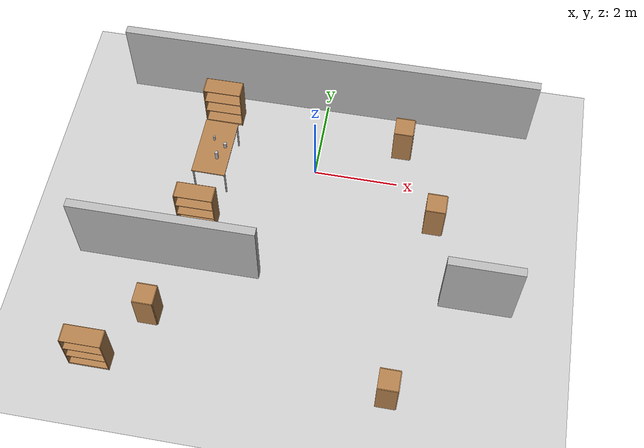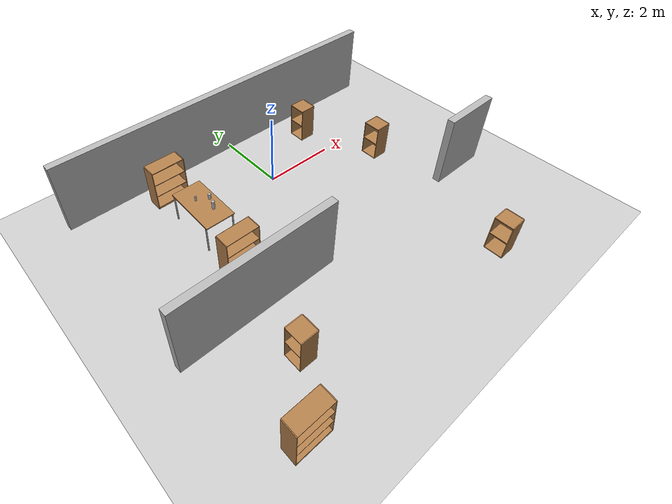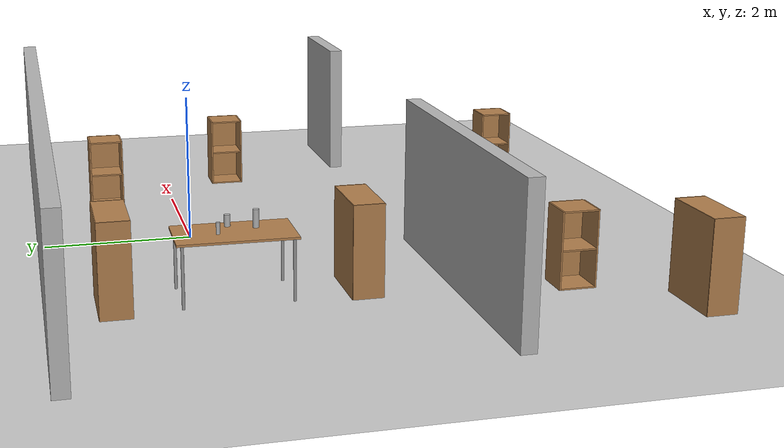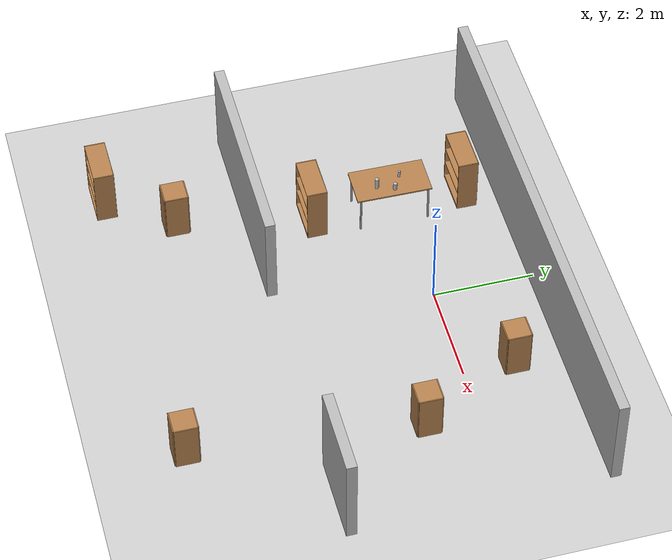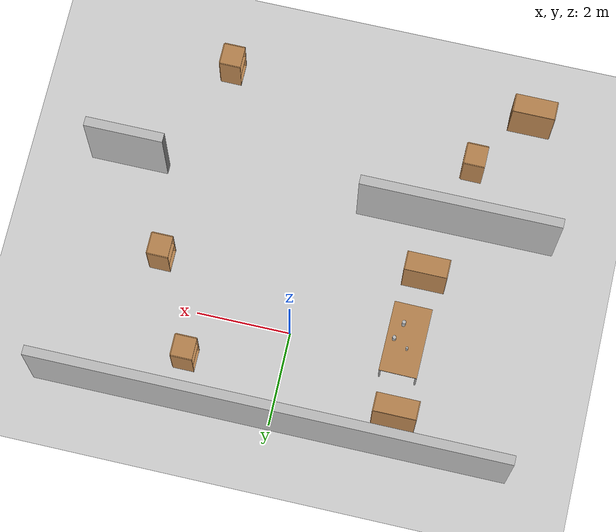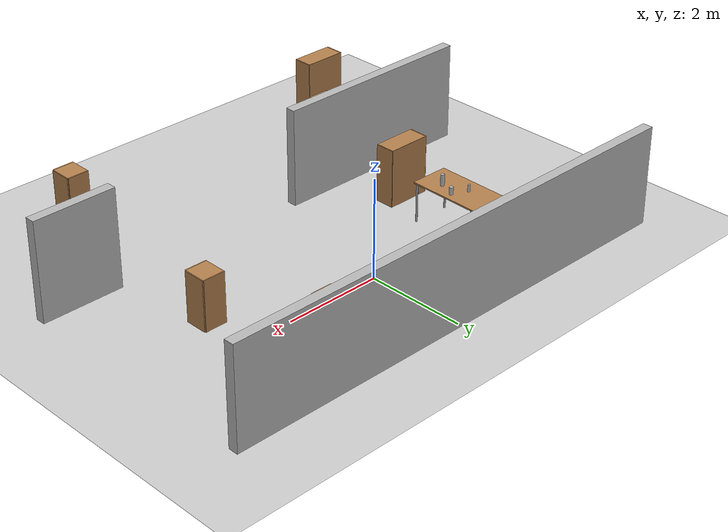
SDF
<sdf version="1.7">
 <world name="default">
  <model name="ground_plane">
   <static>1</static>
   <link name="link">
    <collision name="collision">
     <geometry><plane><normal>0 0 1</normal><size>100 100</size></plane></geometry>
     <surface><friction><ode><mu>100</mu><mu2>50</mu2></ode></friction></surface>
    </collision>
    <visual name="visual">
     <cast_shadows>0</cast_shadows>
     <geometry><plane><normal>0 0 1</normal><size>100 100</size></plane></geometry>
     <material>
      <script><uri>file://media/materials/scripts/gazebo.material</uri><name>Gazebo/Grey</name></script>
     </material>
    </visual>
    <velocity_decay><linear>0</linear><angular>0</angular></velocity_decay>
   </link>
  </model>
  <model name="wall_2_model">
   <pose>0 2 1 0 -0 0</pose>
   <static>1</static>
   <link name="wall_2_body">
    <inertial>
     <mass>1</mass>
     <inertia><ixx>1</ixx><ixy>0</ixy><ixz>0</ixz><iyy>1</iyy><iyz>0</iyz><izz>1</izz></inertia>
    </inertial>
    <collision name="collision"><geometry><box><size>10 0.2 2</size></box></geometry></collision>
    <visual name="visual"><geometry><box><size>10 0.2 2</size></box></geometry></visual>
    <velocity_decay><linear>0</linear><angular>0</angular></velocity_decay>
   </link>
  </model>
  <model name="wall_5_model">
   <pose>-2.89886 -3 1 0 -0 0</pose>
   <static>1</static>
   <link name="wall_5_body">
    <inertial>
     <mass>1</mass>
     <inertia><ixx>1</ixx><ixy>0</ixy><ixz>0</ixz><iyy>1</iyy><iyz>0</iyz><izz>1</izz></inertia>
    </inertial>
    <collision name="collision"><geometry><box><size>4.24454 0.2 2</size></box></geometry></collision>
    <visual name="visual"><geometry><box><size>4.24454 0.2 2</size></box></geometry></visual>
    <velocity_decay><linear>0</linear><angular>0</angular></velocity_decay>
   </link>
  </model>
  <model name="wall_6_model">
   <pose>4.18871 -2.96928 1 0 -0 0</pose>
   <static>1</static>
   <link name="wall_6_body">
    <inertial>
     <mass>1</mass>
     <inertia><ixx>1</ixx><ixy>0</ixy><ixz>0</ixz><iyy>1</iyy><iyz>0</iyz><izz>1</izz></inertia>
    </inertial>
    <collision name="collision"><geometry><box><size>1.67243 0.2 2</size></box></geometry></collision>
    <visual name="visual"><geometry><box><size>1.67243 0.2 2</size></box></geometry></visual>
    <velocity_decay><linear>0</linear><angular>0</angular></velocity_decay>
   </link>
  </model>
  <model name="cabinet">
   <static>0</static>
   <link name="cabinet_bottom_plate">
    <inertial>
     <pose>0 0 -1 0 -0 0</pose>
     <inertia><ixx>2.05</ixx><ixy>0</ixy><ixz>0</ixz><iyy>2.05</iyy><iyz>0</iyz><izz>2.05</izz></inertia>
     <mass>25</mass>
    </inertial>
    <collision name="cabinet_bottom_plate_geom">
     <pose>0 0 0.01 0 -0 0</pose>
     <geometry><box><size>0.45 0.45 0.02</size></box></geometry>
    </collision>
    <visual name="cabinet_bottom_plate_geom_visual">
     <pose>0 0 0.01 0 -0 0</pose>
     <geometry><box><size>0.45 0.45 0.02</size></box></geometry>
     <material>
      <script><uri>file://media/materials/scripts/gazebo.material</uri><name>Gazebo/Wood</name></script>
     </material>
    </visual>
    <collision name="cabinet_bottom_plate_geom_cabinet_back_plate">
     <pose>0.235 0 0.51 0 -0 0</pose>
     <geometry><box><size>0.02 0.45 1.02</size></box></geometry>
    </collision>
    <visual name="cabinet_bottom_plate_geom_cabinet_back_plate_visual">
     <pose>0.235 0 0.51 0 -0 0</pose>
     <geometry><box><size>0.02 0.45 1.02</size></box></geometry>
     <material>
      <script><uri>file://media/materials/scripts/gazebo.material</uri><name>Gazebo/Wood</name></script>
     </material>
    </visual>
    <collision name="cabinet_bottom_plate_geom_cabinet_left_plate">
     <pose>0 0.235 0.51 0 -0 0</pose>
     <geometry><box><size>0.45 0.02 1.02</size></box></geometry>
    </collision>
    <visual name="cabinet_bottom_plate_geom_cabinet_left_plate_visual">
     <pose>0 0.235 0.51 0 -0 0</pose>
     <geometry><box><size>0.45 0.02 1.02</size></box></geometry>
     <material>
      <script><uri>file://media/materials/scripts/gazebo.material</uri><name>Gazebo/Wood</name></script>
     </material>
    </visual>
    <collision name="cabinet_bottom_plate_geom_cabinet_middle_plate">
     <pose>0 0 0.51 0 -0 0</pose>
     <geometry><box><size>0.45 0.45 0.02</size></box></geometry>
    </collision>
    <visual name="cabinet_bottom_plate_geom_cabinet_middle_plate_visual">
     <pose>0 0 0.51 0 -0 0</pose>
     <geometry><box><size>0.45 0.45 0.02</size></box></geometry>
     <material>
      <script><uri>file://media/materials/scripts/gazebo.material</uri><name>Gazebo/Wood</name></script>
     </material>
    </visual>
    <collision name="cabinet_bottom_plate_geom_cabinet_right_plate">
     <pose>0 -0.235 0.51 0 -0 0</pose>
     <geometry><box><size>0.45 0.02 1.02</size></box></geometry>
    </collision>
    <visual name="cabinet_bottom_plate_geom_cabinet_right_plate_visual">
     <pose>0 -0.235 0.51 0 -0 0</pose>
     <geometry><box><size>0.45 0.02 1.02</size></box></geometry>
     <material>
      <script><uri>file://media/materials/scripts/gazebo.material</uri><name>Gazebo/Wood</name></script>
     </material>
    </visual>
    <collision name="cabinet_bottom_plate_geom_cabinet_top_plate">
     <pose>0 0 1.01 0 -0 0</pose>
     <geometry><box><size>0.45 0.45 0.02</size></box></geometry>
    </collision>
    <visual name="cabinet_bottom_plate_geom_cabinet_top_plate_visual">
     <pose>0 0 1.01 0 -0 0</pose>
     <geometry><box><size>0.45 0.45 0.02</size></box></geometry>
     <material>
      <script><uri>file://media/materials/scripts/gazebo.material</uri><name>Gazebo/Wood</name></script>
     </material>
    </visual>
    <velocity_decay><linear>0</linear><angular>0</angular></velocity_decay>
   </link>
   <pose>1.9949 1.00009 -0 1e-06 -0 -0.000435</pose>
  </model>
  <model name="cabinet_0">
   <static>0</static>
   <link name="cabinet_bottom_plate">
    <inertial>
     <pose>0 0 -1 0 -0 0</pose>
     <inertia><ixx>2.05</ixx><ixy>0</ixy><ixz>0</ixz><iyy>2.05</iyy><iyz>0</iyz><izz>2.05</izz></inertia>
     <mass>25</mass>
    </inertial>
    <collision name="cabinet_bottom_plate_geom">
     <pose>0 0 0.01 0 -0 0</pose>
     <geometry><box><size>0.45 0.45 0.02</size></box></geometry>
    </collision>
    <visual name="cabinet_bottom_plate_geom_visual">
     <pose>0 0 0.01 0 -0 0</pose>
     <geometry><box><size>0.45 0.45 0.02</size></box></geometry>
     <material>
      <script><uri>file://media/materials/scripts/gazebo.material</uri><name>Gazebo/Wood</name></script>
     </material>
    </visual>
    <collision name="cabinet_bottom_plate_geom_cabinet_back_plate">
     <pose>0.235 0 0.51 0 -0 0</pose>
     <geometry><box><size>0.02 0.45 1.02</size></box></geometry>
    </collision>
    <visual name="cabinet_bottom_plate_geom_cabinet_back_plate_visual">
     <pose>0.235 0 0.51 0 -0 0</pose>
     <geometry><box><size>0.02 0.45 1.02</size></box></geometry>
     <material>
      <script><uri>file://media/materials/scripts/gazebo.material</uri><name>Gazebo/Wood</name></script>
     </material>
    </visual>
    <collision name="cabinet_bottom_plate_geom_cabinet_left_plate">
     <pose>0 0.235 0.51 0 -0 0</pose>
     <geometry><box><size>0.45 0.02 1.02</size></box></geometry>
    </collision>
    <visual name="cabinet_bottom_plate_geom_cabinet_left_plate_visual">
     <pose>0 0.235 0.51 0 -0 0</pose>
     <geometry><box><size>0.45 0.02 1.02</size></box></geometry>
     <material>
      <script><uri>file://media/materials/scripts/gazebo.material</uri><name>Gazebo/Wood</name></script>
     </material>
    </visual>
    <collision name="cabinet_bottom_plate_geom_cabinet_middle_plate">
     <pose>0 0 0.51 0 -0 0</pose>
     <geometry><box><size>0.45 0.45 0.02</size></box></geometry>
    </collision>
    <visual name="cabinet_bottom_plate_geom_cabinet_middle_plate_visual">
     <pose>0 0 0.51 0 -0 0</pose>
     <geometry><box><size>0.45 0.45 0.02</size></box></geometry>
     <material>
      <script><uri>file://media/materials/scripts/gazebo.material</uri><name>Gazebo/Wood</name></script>
     </material>
    </visual>
    <collision name="cabinet_bottom_plate_geom_cabinet_right_plate">
     <pose>0 -0.235 0.51 0 -0 0</pose>
     <geometry><box><size>0.45 0.02 1.02</size></box></geometry>
    </collision>
    <visual name="cabinet_bottom_plate_geom_cabinet_right_plate_visual">
     <pose>0 -0.235 0.51 0 -0 0</pose>
     <geometry><box><size>0.45 0.02 1.02</size></box></geometry>
     <material>
      <script><uri>file://media/materials/scripts/gazebo.material</uri><name>Gazebo/Wood</name></script>
     </material>
    </visual>
    <collision name="cabinet_bottom_plate_geom_cabinet_top_plate">
     <pose>0 0 1.01 0 -0 0</pose>
     <geometry><box><size>0.45 0.45 0.02</size></box></geometry>
    </collision>
    <visual name="cabinet_bottom_plate_geom_cabinet_top_plate_visual">
     <pose>0 0 1.01 0 -0 0</pose>
     <geometry><box><size>0.45 0.45 0.02</size></box></geometry>
     <material>
      <script><uri>file://media/materials/scripts/gazebo.material</uri><name>Gazebo/Wood</name></script>
     </material>
    </visual>
    <velocity_decay><linear>0</linear><angular>0</angular></velocity_decay>
   </link>
   <pose>2.51058 -5.43931 -0 -1e-06 -0 -0.004095</pose>
  </model>
  <model name="bookshelf_0">
   <static>0</static>
   <link name="link">
    <inertial>
     <mass>1</mass>
     <inertia><ixx>1</ixx><ixy>0</ixy><ixz>0</ixz><iyy>1</iyy><iyz>0</iyz><izz>1</izz></inertia>
    </inertial>
    <collision name="back">
     <pose>0 0.005 0.6 0 -0 0</pose>
     <geometry><box><size>0.9 0.01 1.2</size></box></geometry>
    </collision>
    <visual name="visual1">
     <pose>0 0.005 0.6 0 -0 0</pose>
     <geometry><box><size>0.9 0.01 1.2</size></box></geometry>
     <material>
      <script><uri>file://media/materials/scripts/gazebo.material</uri><name>Gazebo/Wood</name></script>
     </material>
    </visual>
    <collision name="left_side">
     <pose>0.45 -0.195 0.6 0 -0 0</pose>
     <geometry><box><size>0.02 0.4 1.2</size></box></geometry>
    </collision>
    <visual name="visual2">
     <pose>0.45 -0.195 0.6 0 -0 0</pose>
     <geometry><box><size>0.02 0.4 1.2</size></box></geometry>
     <material>
      <script><uri>file://media/materials/scripts/gazebo.material</uri><name>Gazebo/Wood</name></script>
     </material>
    </visual>
    <collision name="right_side">
     <pose>-0.45 -0.195 0.6 0 -0 0</pose>
     <geometry><box><size>0.02 0.4 1.2</size></box></geometry>
    </collision>
    <visual name="visual3">
     <pose>-0.45 -0.195 0.6 0 -0 0</pose>
     <geometry><box><size>0.02 0.4 1.2</size></box></geometry>
     <material>
      <script><uri>file://media/materials/scripts/gazebo.material</uri><name>Gazebo/Wood</name></script>
     </material>
    </visual>
    <collision name="bottom">
     <pose>0 -0.195 0.03 0 -0 0</pose>
     <geometry><box><size>0.88 0.4 0.06</size></box></geometry>
    </collision>
    <visual name="visual4">
     <pose>0 -0.195 0.03 0 -0 0</pose>
     <geometry><box><size>0.88 0.4 0.06</size></box></geometry>
     <material>
      <script><uri>file://media/materials/scripts/gazebo.material</uri><name>Gazebo/Wood</name></script>
     </material>
    </visual>
    <collision name="top">
     <pose>0 -0.195 1.19 0 -0 0</pose>
     <geometry><box><size>0.88 0.4 0.02</size></box></geometry>
    </collision>
    <visual name="visual5">
     <pose>0 -0.195 1.19 0 -0 0</pose>
     <geometry><box><size>0.88 0.4 0.02</size></box></geometry>
     <material>
      <script><uri>file://media/materials/scripts/gazebo.material</uri><name>Gazebo/Wood</name></script>
     </material>
    </visual>
    <collision name="low_shelf">
     <pose>0 -0.195 0.43 0 -0 0</pose>
     <geometry><box><size>0.88 0.4 0.02</size></box></geometry>
    </collision>
    <visual name="visual6">
     <pose>0 -0.195 0.43 0 -0 0</pose>
     <geometry><box><size>0.88 0.4 0.02</size></box></geometry>
     <material>
      <script><uri>file://media/materials/scripts/gazebo.material</uri><name>Gazebo/Wood</name></script>
     </material>
    </visual>
    <collision name="high_shelf">
     <pose>0 -0.195 0.8 0 -0 0</pose>
     <geometry><box><size>0.88 0.4 0.02</size></box></geometry>
    </collision>
    <visual name="visual7">
     <pose>0 -0.195 0.8 0 -0 0</pose>
     <geometry><box><size>0.88 0.4 0.02</size></box></geometry>
     <material>
      <script><uri>file://media/materials/scripts/gazebo.material</uri><name>Gazebo/Wood</name></script>
     </material>
    </visual>
    <velocity_decay><linear>0</linear><angular>0</angular></velocity_decay>
   </link>
   <pose>-2.49657 -1.57894 0 -3.9e-05 0 0</pose>
  </model>
  <model name="bookshelf_1">
   <static>0</static>
   <link name="link">
    <inertial>
     <mass>1</mass>
     <inertia><ixx>1</ixx><ixy>0</ixy><ixz>0</ixz><iyy>1</iyy><iyz>0</iyz><izz>1</izz></inertia>
    </inertial>
    <collision name="back">
     <pose>0 0.005 0.6 0 -0 0</pose>
     <geometry><box><size>0.9 0.01 1.2</size></box></geometry>
    </collision>
    <visual name="visual1">
     <pose>0 0.005 0.6 0 -0 0</pose>
     <geometry><box><size>0.9 0.01 1.2</size></box></geometry>
     <material>
      <script><uri>file://media/materials/scripts/gazebo.material</uri><name>Gazebo/Wood</name></script>
     </material>
    </visual>
    <collision name="left_side">
     <pose>0.45 -0.195 0.6 0 -0 0</pose>
     <geometry><box><size>0.02 0.4 1.2</size></box></geometry>
    </collision>
    <visual name="visual2">
     <pose>0.45 -0.195 0.6 0 -0 0</pose>
     <geometry><box><size>0.02 0.4 1.2</size></box></geometry>
     <material>
      <script><uri>file://media/materials/scripts/gazebo.material</uri><name>Gazebo/Wood</name></script>
     </material>
    </visual>
    <collision name="right_side">
     <pose>-0.45 -0.195 0.6 0 -0 0</pose>
     <geometry><box><size>0.02 0.4 1.2</size></box></geometry>
    </collision>
    <visual name="visual3">
     <pose>-0.45 -0.195 0.6 0 -0 0</pose>
     <geometry><box><size>0.02 0.4 1.2</size></box></geometry>
     <material>
      <script><uri>file://media/materials/scripts/gazebo.material</uri><name>Gazebo/Wood</name></script>
     </material>
    </visual>
    <collision name="bottom">
     <pose>0 -0.195 0.03 0 -0 0</pose>
     <geometry><box><size>0.88 0.4 0.06</size></box></geometry>
    </collision>
    <visual name="visual4">
     <pose>0 -0.195 0.03 0 -0 0</pose>
     <geometry><box><size>0.88 0.4 0.06</size></box></geometry>
     <material>
      <script><uri>file://media/materials/scripts/gazebo.material</uri><name>Gazebo/Wood</name></script>
     </material>
    </visual>
    <collision name="top">
     <pose>0 -0.195 1.19 0 -0 0</pose>
     <geometry><box><size>0.88 0.4 0.02</size></box></geometry>
    </collision>
    <visual name="visual5">
     <pose>0 -0.195 1.19 0 -0 0</pose>
     <geometry><box><size>0.88 0.4 0.02</size></box></geometry>
     <material>
      <script><uri>file://media/materials/scripts/gazebo.material</uri><name>Gazebo/Wood</name></script>
     </material>
    </visual>
    <collision name="low_shelf">
     <pose>0 -0.195 0.43 0 -0 0</pose>
     <geometry><box><size>0.88 0.4 0.02</size></box></geometry>
    </collision>
    <visual name="visual6">
     <pose>0 -0.195 0.43 0 -0 0</pose>
     <geometry><box><size>0.88 0.4 0.02</size></box></geometry>
     <material>
      <script><uri>file://media/materials/scripts/gazebo.material</uri><name>Gazebo/Wood</name></script>
     </material>
    </visual>
    <collision name="high_shelf">
     <pose>0 -0.195 0.8 0 -0 0</pose>
     <geometry><box><size>0.88 0.4 0.02</size></box></geometry>
    </collision>
    <visual name="visual7">
     <pose>0 -0.195 0.8 0 -0 0</pose>
     <geometry><box><size>0.88 0.4 0.02</size></box></geometry>
     <material>
      <script><uri>file://media/materials/scripts/gazebo.material</uri><name>Gazebo/Wood</name></script>
     </material>
    </visual>
    <velocity_decay><linear>0</linear><angular>0</angular></velocity_decay>
   </link>
   <pose>-2.49816 1.46785 1e-06 -8.7e-05 1e-06 -3e-06</pose>
  </model>
  <model name="cabinet_1">
   <static>0</static>
   <link name="cabinet_bottom_plate">
    <inertial>
     <pose>0 0 -1 0 -0 0</pose>
     <inertia><ixx>2.05</ixx><ixy>0</ixy><ixz>0</ixz><iyy>2.05</iyy><iyz>0</iyz><izz>2.05</izz></inertia>
     <mass>25</mass>
    </inertial>
    <collision name="cabinet_bottom_plate_geom">
     <pose>0 0 0.01 0 -0 0</pose>
     <geometry><box><size>0.45 0.45 0.02</size></box></geometry>
    </collision>
    <visual name="cabinet_bottom_plate_geom_visual">
     <pose>0 0 0.01 0 -0 0</pose>
     <geometry><box><size>0.45 0.45 0.02</size></box></geometry>
     <material>
      <script><uri>file://media/materials/scripts/gazebo.material</uri><name>Gazebo/Wood</name></script>
     </material>
    </visual>
    <collision name="cabinet_bottom_plate_geom_cabinet_back_plate">
     <pose>0.235 0 0.51 0 -0 0</pose>
     <geometry><box><size>0.02 0.45 1.02</size></box></geometry>
    </collision>
    <visual name="cabinet_bottom_plate_geom_cabinet_back_plate_visual">
     <pose>0.235 0 0.51 0 -0 0</pose>
     <geometry><box><size>0.02 0.45 1.02</size></box></geometry>
     <material>
      <script><uri>file://media/materials/scripts/gazebo.material</uri><name>Gazebo/Wood</name></script>
     </material>
    </visual>
    <collision name="cabinet_bottom_plate_geom_cabinet_left_plate">
     <pose>0 0.235 0.51 0 -0 0</pose>
     <geometry><box><size>0.45 0.02 1.02</size></box></geometry>
    </collision>
    <visual name="cabinet_bottom_plate_geom_cabinet_left_plate_visual">
     <pose>0 0.235 0.51 0 -0 0</pose>
     <geometry><box><size>0.45 0.02 1.02</size></box></geometry>
     <material>
      <script><uri>file://media/materials/scripts/gazebo.material</uri><name>Gazebo/Wood</name></script>
     </material>
    </visual>
    <collision name="cabinet_bottom_plate_geom_cabinet_middle_plate">
     <pose>0 0 0.51 0 -0 0</pose>
     <geometry><box><size>0.45 0.45 0.02</size></box></geometry>
    </collision>
    <visual name="cabinet_bottom_plate_geom_cabinet_middle_plate_visual">
     <pose>0 0 0.51 0 -0 0</pose>
     <geometry><box><size>0.45 0.45 0.02</size></box></geometry>
     <material>
      <script><uri>file://media/materials/scripts/gazebo.material</uri><name>Gazebo/Wood</name></script>
     </material>
    </visual>
    <collision name="cabinet_bottom_plate_geom_cabinet_right_plate">
     <pose>0 -0.235 0.51 0 -0 0</pose>
     <geometry><box><size>0.45 0.02 1.02</size></box></geometry>
    </collision>
    <visual name="cabinet_bottom_plate_geom_cabinet_right_plate_visual">
     <pose>0 -0.235 0.51 0 -0 0</pose>
     <geometry><box><size>0.45 0.02 1.02</size></box></geometry>
     <material>
      <script><uri>file://media/materials/scripts/gazebo.material</uri><name>Gazebo/Wood</name></script>
     </material>
    </visual>
    <collision name="cabinet_bottom_plate_geom_cabinet_top_plate">
     <pose>0 0 1.01 0 -0 0</pose>
     <geometry><box><size>0.45 0.45 0.02</size></box></geometry>
    </collision>
    <visual name="cabinet_bottom_plate_geom_cabinet_top_plate_visual">
     <pose>0 0 1.01 0 -0 0</pose>
     <geometry><box><size>0.45 0.45 0.02</size></box></geometry>
     <material>
      <script><uri>file://media/materials/scripts/gazebo.material</uri><name>Gazebo/Wood</name></script>
     </material>
    </visual>
    <velocity_decay><linear>0</linear><angular>0</angular></velocity_decay>
   </link>
   <pose>-3.00515 -4.39988 -0 -1e-06 -0 -0.004095</pose>
  </model>
  <model name="cabinet_3">
   <static>0</static>
   <link name="cabinet_bottom_plate">
    <inertial>
     <pose>0 0 -1 0 -0 0</pose>
     <inertia><ixx>2.05</ixx><ixy>0</ixy><ixz>0</ixz><iyy>2.05</iyy><iyz>0</iyz><izz>2.05</izz></inertia>
     <mass>25</mass>
    </inertial>
    <collision name="cabinet_bottom_plate_geom">
     <pose>0 0 0.01 0 -0 0</pose>
     <geometry><box><size>0.45 0.45 0.02</size></box></geometry>
    </collision>
    <visual name="cabinet_bottom_plate_geom_visual">
     <pose>0 0 0.01 0 -0 0</pose>
     <geometry><box><size>0.45 0.45 0.02</size></box></geometry>
     <material>
      <script><uri>file://media/materials/scripts/gazebo.material</uri><name>Gazebo/Wood</name></script>
     </material>
    </visual>
    <collision name="cabinet_bottom_plate_geom_cabinet_back_plate">
     <pose>0.235 0 0.51 0 -0 0</pose>
     <geometry><box><size>0.02 0.45 1.02</size></box></geometry>
    </collision>
    <visual name="cabinet_bottom_plate_geom_cabinet_back_plate_visual">
     <pose>0.235 0 0.51 0 -0 0</pose>
     <geometry><box><size>0.02 0.45 1.02</size></box></geometry>
     <material>
      <script><uri>file://media/materials/scripts/gazebo.material</uri><name>Gazebo/Wood</name></script>
     </material>
    </visual>
    <collision name="cabinet_bottom_plate_geom_cabinet_left_plate">
     <pose>0 0.235 0.51 0 -0 0</pose>
     <geometry><box><size>0.45 0.02 1.02</size></box></geometry>
    </collision>
    <visual name="cabinet_bottom_plate_geom_cabinet_left_plate_visual">
     <pose>0 0.235 0.51 0 -0 0</pose>
     <geometry><box><size>0.45 0.02 1.02</size></box></geometry>
     <material>
      <script><uri>file://media/materials/scripts/gazebo.material</uri><name>Gazebo/Wood</name></script>
     </material>
    </visual>
    <collision name="cabinet_bottom_plate_geom_cabinet_middle_plate">
     <pose>0 0 0.51 0 -0 0</pose>
     <geometry><box><size>0.45 0.45 0.02</size></box></geometry>
    </collision>
    <visual name="cabinet_bottom_plate_geom_cabinet_middle_plate_visual">
     <pose>0 0 0.51 0 -0 0</pose>
     <geometry><box><size>0.45 0.45 0.02</size></box></geometry>
     <material>
      <script><uri>file://media/materials/scripts/gazebo.material</uri><name>Gazebo/Wood</name></script>
     </material>
    </visual>
    <collision name="cabinet_bottom_plate_geom_cabinet_right_plate">
     <pose>0 -0.235 0.51 0 -0 0</pose>
     <geometry><box><size>0.45 0.02 1.02</size></box></geometry>
    </collision>
    <visual name="cabinet_bottom_plate_geom_cabinet_right_plate_visual">
     <pose>0 -0.235 0.51 0 -0 0</pose>
     <geometry><box><size>0.45 0.02 1.02</size></box></geometry>
     <material>
      <script><uri>file://media/materials/scripts/gazebo.material</uri><name>Gazebo/Wood</name></script>
     </material>
    </visual>
    <collision name="cabinet_bottom_plate_geom_cabinet_top_plate">
     <pose>0 0 1.01 0 -0 0</pose>
     <geometry><box><size>0.45 0.45 0.02</size></box></geometry>
    </collision>
    <visual name="cabinet_bottom_plate_geom_cabinet_top_plate_visual">
     <pose>0 0 1.01 0 -0 0</pose>
     <geometry><box><size>0.45 0.45 0.02</size></box></geometry>
     <material>
      <script><uri>file://media/materials/scripts/gazebo.material</uri><name>Gazebo/Wood</name></script>
     </material>
    </visual>
    <velocity_decay><linear>0</linear><angular>0</angular></velocity_decay>
   </link>
   <pose>2.99491 -0.999841 -0 -1e-06 0 -0.004098</pose>
  </model>
  <model name="bookshelf_6">
   <static>0</static>
   <link name="link">
    <inertial>
     <mass>1</mass>
     <inertia><ixx>1</ixx><ixy>0</ixy><ixz>0</ixz><iyy>1</iyy><iyz>0</iyz><izz>1</izz></inertia>
    </inertial>
    <collision name="back">
     <pose>0 0.005 0.6 0 -0 0</pose>
     <geometry><box><size>0.9 0.01 1.2</size></box></geometry>
    </collision>
    <visual name="visual1">
     <pose>0 0.005 0.6 0 -0 0</pose>
     <geometry><box><size>0.9 0.01 1.2</size></box></geometry>
     <material>
      <script><uri>file://media/materials/scripts/gazebo.material</uri><name>Gazebo/Wood</name></script>
     </material>
    </visual>
    <collision name="left_side">
     <pose>0.45 -0.195 0.6 0 -0 0</pose>
     <geometry><box><size>0.02 0.4 1.2</size></box></geometry>
    </collision>
    <visual name="visual2">
     <pose>0.45 -0.195 0.6 0 -0 0</pose>
     <geometry><box><size>0.02 0.4 1.2</size></box></geometry>
     <material>
      <script><uri>file://media/materials/scripts/gazebo.material</uri><name>Gazebo/Wood</name></script>
     </material>
    </visual>
    <collision name="right_side">
     <pose>-0.45 -0.195 0.6 0 -0 0</pose>
     <geometry><box><size>0.02 0.4 1.2</size></box></geometry>
    </collision>
    <visual name="visual3">
     <pose>-0.45 -0.195 0.6 0 -0 0</pose>
     <geometry><box><size>0.02 0.4 1.2</size></box></geometry>
     <material>
      <script><uri>file://media/materials/scripts/gazebo.material</uri><name>Gazebo/Wood</name></script>
     </material>
    </visual>
    <collision name="bottom">
     <pose>0 -0.195 0.03 0 -0 0</pose>
     <geometry><box><size>0.88 0.4 0.06</size></box></geometry>
    </collision>
    <visual name="visual4">
     <pose>0 -0.195 0.03 0 -0 0</pose>
     <geometry><box><size>0.88 0.4 0.06</size></box></geometry>
     <material>
      <script><uri>file://media/materials/scripts/gazebo.material</uri><name>Gazebo/Wood</name></script>
     </material>
    </visual>
    <collision name="top">
     <pose>0 -0.195 1.19 0 -0 0</pose>
     <geometry><box><size>0.88 0.4 0.02</size></box></geometry>
    </collision>
    <visual name="visual5">
     <pose>0 -0.195 1.19 0 -0 0</pose>
     <geometry><box><size>0.88 0.4 0.02</size></box></geometry>
     <material>
      <script><uri>file://media/materials/scripts/gazebo.material</uri><name>Gazebo/Wood</name></script>
     </material>
    </visual>
    <collision name="low_shelf">
     <pose>0 -0.195 0.43 0 -0 0</pose>
     <geometry><box><size>0.88 0.4 0.02</size></box></geometry>
    </collision>
    <visual name="visual6">
     <pose>0 -0.195 0.43 0 -0 0</pose>
     <geometry><box><size>0.88 0.4 0.02</size></box></geometry>
     <material>
      <script><uri>file://media/materials/scripts/gazebo.material</uri><name>Gazebo/Wood</name></script>
     </material>
    </visual>
    <collision name="high_shelf">
     <pose>0 -0.195 0.8 0 -0 0</pose>
     <geometry><box><size>0.88 0.4 0.02</size></box></geometry>
    </collision>
    <visual name="visual7">
     <pose>0 -0.195 0.8 0 -0 0</pose>
     <geometry><box><size>0.88 0.4 0.02</size></box></geometry>
     <material>
      <script><uri>file://media/materials/scripts/gazebo.material</uri><name>Gazebo/Wood</name></script>
     </material>
    </visual>
    <velocity_decay><linear>0</linear><angular>0</angular></velocity_decay>
   </link>
   <pose>-4 -5.47465 0 -8e-06 -0 0</pose>
  </model>
  <model name="table_0_clone">
   <static>0</static>
   <link name="link">
    <collision name="surface">
     <pose>0 0 0.9 0 -0 0</pose>
     <geometry><box><size>1.5 0.8 0.03</size></box></geometry>
    </collision>
    <visual name="visual1">
     <pose>0 0 0.9 0 -0 0</pose>
     <geometry><box><size>1.5 0.8 0.03</size></box></geometry>
     <material>
      <script><uri>file://media/materials/scripts/gazebo.material</uri><name>Gazebo/Wood</name></script>
     </material>
    </visual>
    <collision name="front_left_leg">
     <pose>0.68 0.38 0.5 0 -0 0</pose>
     <geometry><cylinder><radius>0.02</radius><length>0.8</length></cylinder></geometry>
    </collision>
    <visual name="front_left_leg">
     <pose>0.68 0.38 0.5 0 -0 0</pose>
     <geometry><cylinder><radius>0.02</radius><length>0.8</length></cylinder></geometry>
     <material>
      <script><uri>file://media/materials/scripts/gazebo.material</uri><name>Gazebo/Grey</name></script>
     </material>
    </visual>
    <collision name="front_right_leg">
     <pose>0.68 -0.38 0.5 0 -0 0</pose>
     <geometry><cylinder><radius>0.02</radius><length>0.8</length></cylinder></geometry>
    </collision>
    <visual name="front_right_leg">
     <pose>0.68 -0.38 0.5 0 -0 0</pose>
     <geometry><cylinder><radius>0.02</radius><length>0.8</length></cylinder></geometry>
     <material>
      <script><uri>file://media/materials/scripts/gazebo.material</uri><name>Gazebo/Grey</name></script>
     </material>
    </visual>
    <collision name="back_right_leg">
     <pose>-0.68 -0.38 0.5 0 -0 0</pose>
     <geometry><cylinder><radius>0.02</radius><length>0.8</length></cylinder></geometry>
    </collision>
    <visual name="back_right_leg">
     <pose>-0.68 -0.38 0.5 0 -0 0</pose>
     <geometry><cylinder><radius>0.02</radius><length>0.8</length></cylinder></geometry>
     <material>
      <script><uri>file://media/materials/scripts/gazebo.material</uri><name>Gazebo/Grey</name></script>
     </material>
    </visual>
    <collision name="back_left_leg">
     <pose>-0.68 0.38 0.5 0 -0 0</pose>
     <geometry><cylinder><radius>0.02</radius><length>0.8</length></cylinder></geometry>
    </collision>
    <visual name="back_left_leg">
     <pose>-0.68 0.38 0.5 0 -0 0</pose>
     <geometry><cylinder><radius>0.02</radius><length>0.8</length></cylinder></geometry>
     <material>
      <script><uri>file://media/materials/scripts/gazebo.material</uri><name>Gazebo/Grey</name></script>
     </material>
    </visual>
    <velocity_decay><linear>0</linear><angular>0</angular></velocity_decay>
    <inertial>
     <inertia><ixx>1</ixx><ixy>0</ixy><ixz>0</ixz><iyy>1</iyy><iyz>0</iyz><izz>1</izz></inertia>
     <mass>1</mass>
    </inertial>
   </link>
   <pose>-2.39242 -0.21757 -0.110315 -0.000959 0.000656 -1.58177</pose>
  </model>
  <model name="pringles_0">
   <static>0</static>
   <link name="link">
    <inertial>
     <mass>0.25</mass>
     <inertia><ixx>0</ixx><ixy>0</ixy><ixz>0</ixz><iyy>0</iyy><iyz>0</iyz><izz>0</izz></inertia>
    </inertial>
    <collision name="collision">
     <geometry><cylinder><radius>0.04</radius><length>0.235</length></cylinder></geometry>
    </collision>
    <visual name="visual">
     <geometry><cylinder><radius>0.04</radius><length>0.235</length></cylinder></geometry>
     <material>
      <script>
       <uri>model://pringles/material/scripts</uri>
       <uri>model://pringles/material/textures</uri>
       <name>Custom/pringles</name>
      </script>
     </material>
    </visual>
    <velocity_decay><linear>0</linear><angular>0</angular></velocity_decay>
   </link>
   <pose>-2.28098 -0.513141 0.921892 0.000764 0.000306 0.004481</pose>
  </model>
  <model name="sprite_0">
   <static>0</static>
   <link name="link">
    <inertial>
     <mass>0.25</mass>
     <inertia><ixx>0</ixx><ixy>0</ixy><ixz>0</ixz><iyy>0</iyy><iyz>0</iyz><izz>0</izz></inertia>
    </inertial>
    <collision name="collision">
     <pose>0 0 0.075 -3.14159 -0 0</pose>
     <geometry><cylinder><radius>0.04</radius><length>0.15</length></cylinder></geometry>
    </collision>
    <visual name="visual">
     <pose>0 0 0.075 -3.14159 -0 0</pose>
     <geometry><cylinder><radius>0.04</radius><length>0.15</length></cylinder></geometry>
     <material>
      <script>
       <uri>model://sprite/material/scripts</uri>
       <uri>model://sprite/material/textures</uri>
       <name>Custom/sprite</name>
      </script>
     </material>
    </visual>
    <velocity_decay><linear>0</linear><angular>0</angular></velocity_decay>
   </link>
   <pose>-2.15475 -0.176583 0.804486 0.000974 0.001207 0.001167</pose>
  </model>
  <model name="biscuits_pack_0">
   <static>0</static>
   <link name="link">
    <inertial>
     <mass>0.01</mass>
     <inertia><ixx>0.001</ixx><ixy>0</ixy><ixz>0</ixz><iyy>0.001</iyy><iyz>0</iyz><izz>0.001</izz></inertia>
    </inertial>
    <collision name="collision">
     <geometry><cylinder><radius>0.025</radius><length>0.15</length></cylinder></geometry>
     <surface><contact><ode><min_depth>0.005</min_depth></ode></contact></surface>
    </collision>
    <visual name="visual">
     <geometry><cylinder><radius>0.025</radius><length>0.15</length></cylinder></geometry>
     <material>
      <script>
       <uri>model://biscuits_pack/material/scripts</uri>
       <uri>model://biscuits_pack/material/textures</uri>
       <name>Custom/biscuits_pack</name>
      </script>
     </material>
    </visual>
   </link>
   <pose>-2.45334 -0.014916 0.879873 0.000315 0.00074 -0.000567</pose>
  </model>
 </world>
</sdf>
